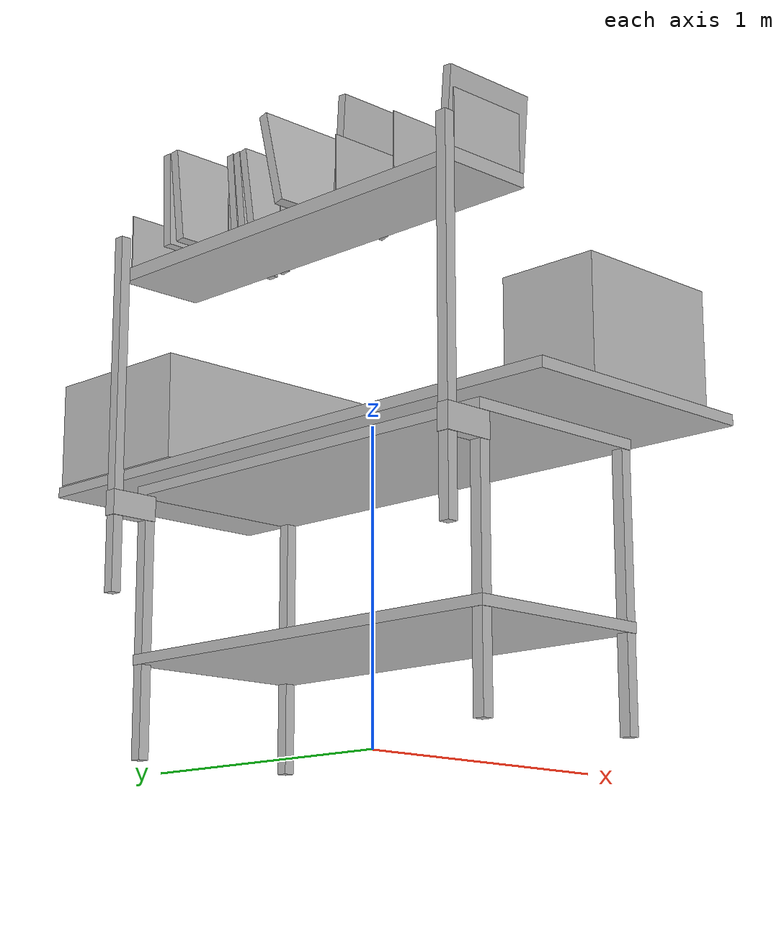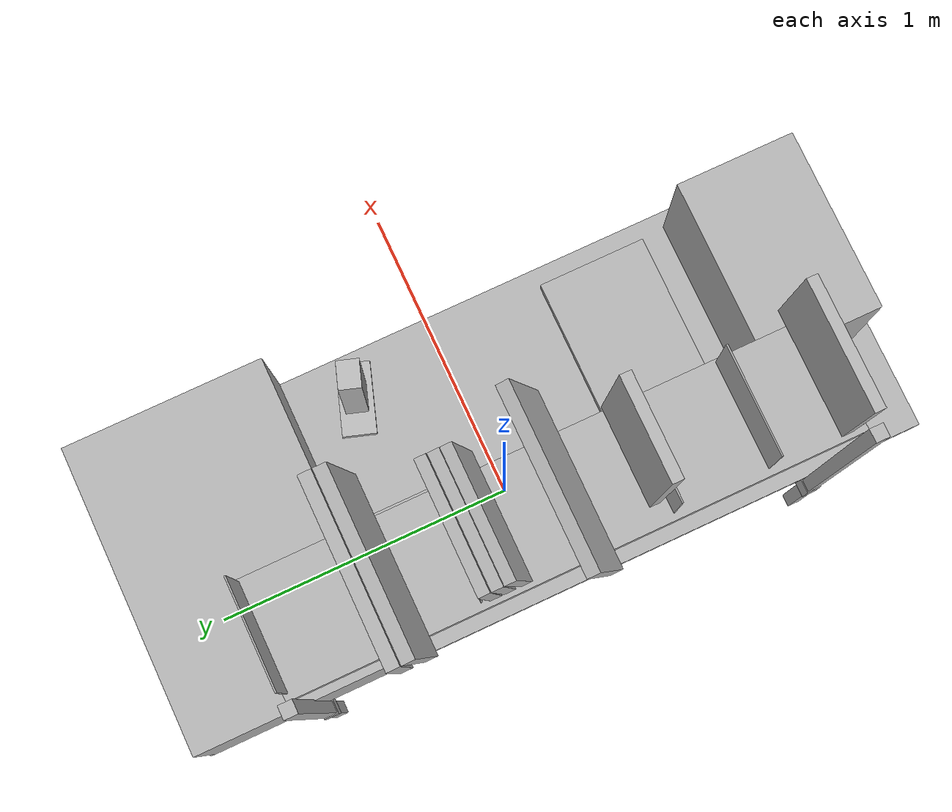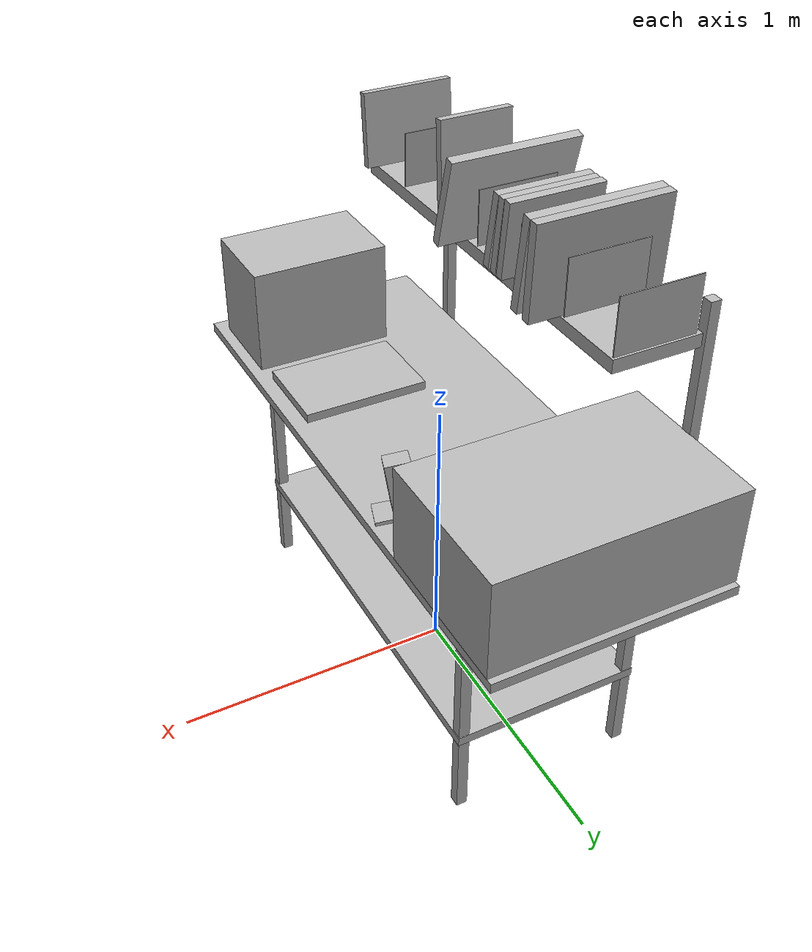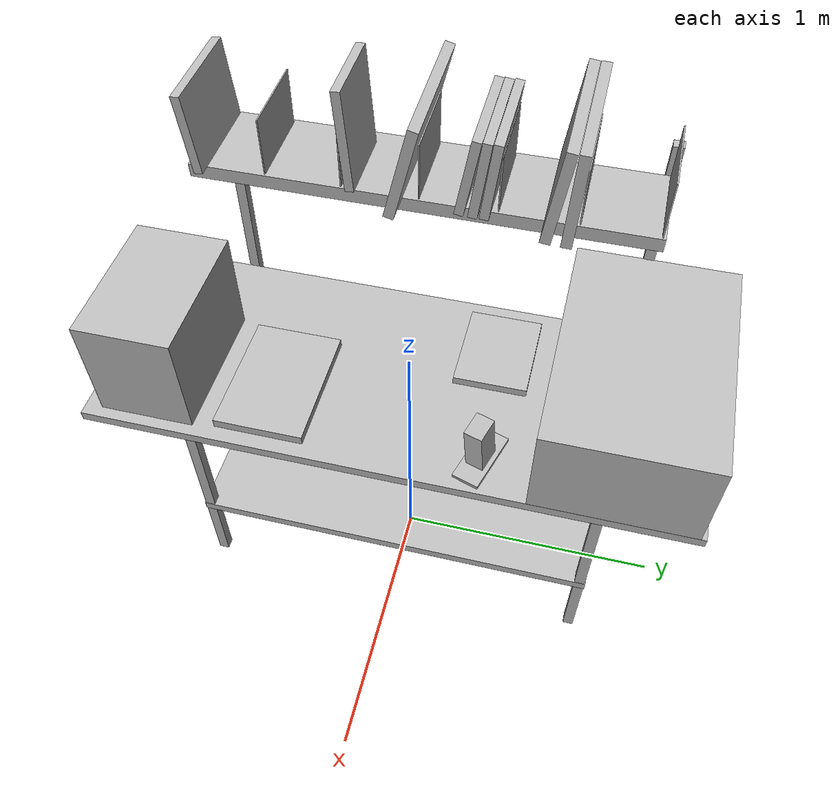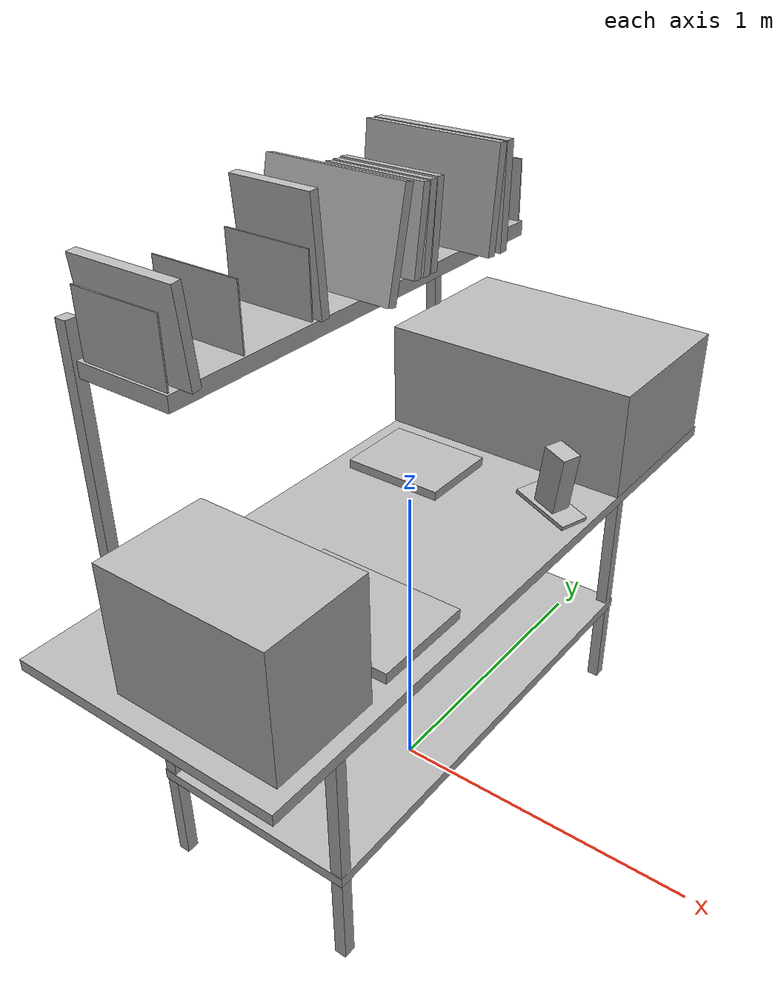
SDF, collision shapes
<?xml version="1.0" ?>
<sdf version="1.6">
  <model name="Packing_Station">
    <link name="base_link">
      <visual name="base_visual">
        <geometry>
          <mesh>
            <uri>base_visual.glb</uri>
          </mesh>
        </geometry>
      </visual>
      <collision name="packaging station015_collider_box">
        <pose>0.0 0.0 0.897656 0.0 0.0 0.0</pose>
        <geometry>
          <box>
            <size>0.8382 2.108201 0.033489</size>
          </box>
        </geometry>
      </collision>
      <collision name="packaging station016_collider_box">
        <pose>0.0 0.0 0.316744 0.0 0.0 0.0</pose>
        <geometry>
          <box>
            <size>0.6604 1.4986 0.033489</size>
          </box>
        </geometry>
      </collision>
      <collision name="packaging station042_collider_box">
        <pose>0.308861 -0.727654 0.440456 0.0 0.0 0.0</pose>
        <geometry>
          <box>
            <size>0.037623 0.037623 0.880912</size>
          </box>
        </geometry>
      </collision>
      <collision name="packaging station042_collider_box.001">
        <pose>-0.308861 -0.727654 0.440456 0.0 0.0 0.0</pose>
        <geometry>
          <box>
            <size>0.037623 0.037623 0.880911</size>
          </box>
        </geometry>
      </collision>
      <collision name="packaging station042_collider_box.002">
        <pose>0.308861 0.727654 0.440456 0.0 0.0 0.0</pose>
        <geometry>
          <box>
            <size>0.037623 0.037623 0.880912</size>
          </box>
        </geometry>
      </collision>
      <collision name="packaging station043_collider_box">
        <pose>-0.308861 0.727654 0.440456 0.0 0.0 0.0</pose>
        <geometry>
          <box>
            <size>0.037623 0.037623 0.880911</size>
          </box>
        </geometry>
      </collision>
      <collision name="packaging station041_collider_box">
        <pose>0.0 0.0 0.864167 0.0 0.0 0.0</pose>
        <geometry>
          <box>
            <size>0.6604 1.4986 0.033489</size>
          </box>
        </geometry>
      </collision>
      <collision name="packaging station041_collider_box.001">
        <pose>-0.436968 -0.727654 1.10832 0.0 0.0 0.0</pose>
        <geometry>
          <box>
            <size>0.035736 0.035736 1.183361</size>
          </box>
        </geometry>
      </collision>
      <collision name="packaging station041_collider_box.002">
        <pose>-0.436968 0.727654 1.10832 0.0 0.0 0.0</pose>
        <geometry>
          <box>
            <size>0.035736 0.035736 1.183361</size>
          </box>
        </geometry>
      </collision>
      <collision name="packaging station013_collider_box">
        <pose>-0.372889 0.727655 0.806211 0.0 0.0 0.0</pose>
        <geometry>
          <box>
            <size>0.169066 0.041117 0.082154</size>
          </box>
        </geometry>
      </collision>
      <collision name="packaging station014_collider_box">
        <pose>-0.372889 -0.727654 0.806211 0.0 0.0 0.0</pose>
        <geometry>
          <box>
            <size>0.169066 0.041117 0.082154</size>
          </box>
        </geometry>
      </collision>
      <collision name="labelprinter_collider_box">
        <pose>0.12418 -0.828282 1.104276 0.0 0.0 0.0</pose>
        <geometry>
          <box>
            <size>0.508 0.3302 0.381</size>
          </box>
        </geometry>
      </collision>
      <collision name="storagebox_collider_box">
        <pose>0.0 0.760448 1.087816 0.0 0.0 0.0</pose>
        <geometry>
          <box>
            <size>0.842441 0.549703 0.340225</size>
          </box>
        </geometry>
      </collision>
      <collision name="handheldscanner001_collider_box">
        <pose>0.289656 0.311643 0.933523 3.141593 0.123054 -0.314628</pose>
        <geometry>
          <box>
            <size>0.208692 0.094746 0.012903</size>
          </box>
        </geometry>
      </collision>
      <collision name="handheldscanner002_collider_box">
        <pose>0.304323 0.30687 1.031666 1.42181 0.0 -1.885424</pose>
        <geometry>
          <box>
            <size>0.063 0.199637 0.083087</size>
          </box>
        </geometry>
      </collision>
      <collision name="packageenvelope_collider_box">
        <pose>-0.18306 0.280363 0.928527 0.0 5.5e-05 -0.0</pose>
        <geometry>
          <box>
            <size>0.330246 0.258727 0.029153</size>
          </box>
        </geometry>
      </collision>
      <collision name="packingstation_cardboardbox_collider_box">
        <pose>0.135936 -0.434021 0.929904 -1.570796 0.0 0.0</pose>
        <geometry>
          <box>
            <size>0.4572 0.032927 0.31188</size>
          </box>
        </geometry>
      </collision>
      <collision name="packaging station022_collider_box">
        <pose>-0.265059 0.0 1.577259 3.141593 -0.0 1.570796</pose>
        <geometry>
          <box>
            <size>1.473158 0.3011 0.044877</size>
          </box>
        </geometry>
      </collision>
      <collision name="packaging station023_collider_box">
        <pose>-0.260006 0.726296 1.693443 -1.570448 3.141593 -0.0</pose>
        <geometry>
          <box>
            <size>0.277775 0.187493 0.004042</size>
          </box>
        </geometry>
      </collision>
      <collision name="packaging station028_collider_box">
        <pose>-0.260006 0.486853 1.693746 -1.570449 -3.141593 -0.0</pose>
        <geometry>
          <box>
            <size>0.277775 0.187493 0.004042</size>
          </box>
        </geometry>
      </collision>
      <collision name="packaging station030_collider_box">
        <pose>-0.260006 0.243416 1.693746 -1.570449 3.141593 -0.0</pose>
        <geometry>
          <box>
            <size>0.277775 0.187493 0.004042</size>
          </box>
        </geometry>
      </collision>
      <collision name="packaging station032_collider_box">
        <pose>-0.260006 -2.1e-05 1.693746 -1.570448 -3.141593 -0.0</pose>
        <geometry>
          <box>
            <size>0.277775 0.187493 0.004042</size>
          </box>
        </geometry>
      </collision>
      <collision name="packaging station034_collider_box">
        <pose>-0.260006 -0.243458 1.693746 -1.570449 3.141593 -0.0</pose>
        <geometry>
          <box>
            <size>0.277775 0.187493 0.004042</size>
          </box>
        </geometry>
      </collision>
      <collision name="packaging station036_collider_box">
        <pose>-0.260006 -0.486895 1.693746 -1.570448 -3.141593 -0.0</pose>
        <geometry>
          <box>
            <size>0.277775 0.187493 0.004042</size>
          </box>
        </geometry>
      </collision>
      <collision name="packaging station026_collider_box">
        <pose>-0.260006 -0.726295 1.693443 1.571144 0.0 -0.0</pose>
        <geometry>
          <box>
            <size>0.277775 0.187493 0.004042</size>
          </box>
        </geometry>
      </collision>
      <collision name="packageenvelope001_collider_box">
        <pose>-0.238303 -0.696445 1.730941 1.48353 3.141588 5.5e-05</pose>
        <geometry>
          <box>
            <size>0.330246 0.258727 0.029153</size>
          </box>
        </geometry>
      </collision>
      <collision name="packageenvelope002_collider_box">
        <pose>-0.238303 0.222293 1.729878 5.9e-05 -1.463168 1.570793</pose>
        <geometry>
          <box>
            <size>0.258727 0.330246 0.029153</size>
          </box>
        </geometry>
      </collision>
      <collision name="packageenvelope003_collider_box">
        <pose>-0.238303 0.189366 1.728958 5.8e-05 -1.449849 1.570794</pose>
        <geometry>
          <box>
            <size>0.258727 0.330246 0.029153</size>
          </box>
        </geometry>
      </collision>
      <collision name="packageenvelope004_collider_box">
        <pose>-0.238303 0.153245 1.730663 1.40421 9e-06 5.4e-05</pose>
        <geometry>
          <box>
            <size>0.330246 0.258727 0.029153</size>
          </box>
        </geometry>
      </collision>
      <collision name="packageenvelope005_collider_box">
        <pose>-0.23419 -0.222656 1.763977 1.637117 -0.0 0.0</pose>
        <geometry>
          <box>
            <size>0.258727 0.330246 0.029153</size>
          </box>
        </geometry>
      </collision>
      <collision name="packingstation_cardboardbox001_collider_box">
        <pose>-0.237421 -0.026879 1.755715 -1.570795 -1.324306 1.570795</pose>
        <geometry>
          <box>
            <size>0.31188 0.032927 0.4572</size>
          </box>
        </geometry>
      </collision>
      <collision name="packingstation_cardboardbox002_collider_box">
        <pose>-0.237421 0.466676 1.755966 -0.0 -0.038016 -1.570796</pose>
        <geometry>
          <box>
            <size>0.032927 0.4572 0.31188</size>
          </box>
        </geometry>
      </collision>
      <collision name="packingstation_cardboardbox003_collider_box">
        <pose>-0.237421 0.418174 1.758195 1.445112 -0.0 0.0</pose>
        <geometry>
          <box>
            <size>0.4572 0.31188 0.032927</size>
          </box>
        </geometry>
      </collision>
    </link>
  </model>
</sdf>
